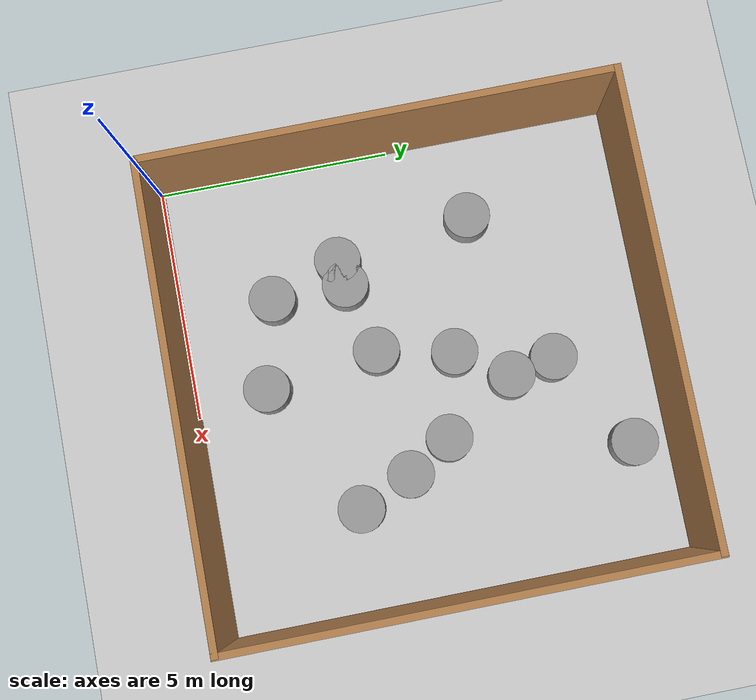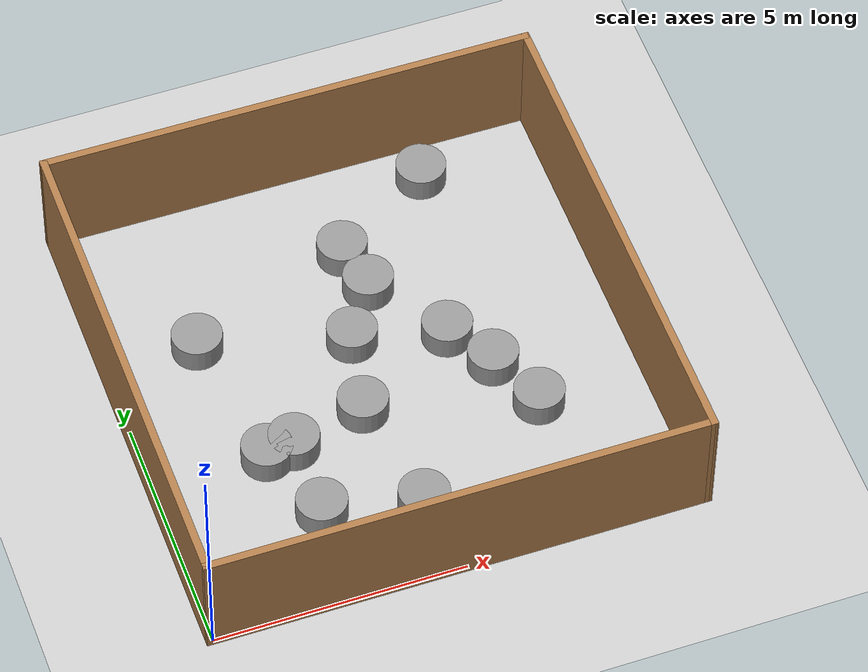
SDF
<sdf version="1.6">
 <world name="default">
  <light name="sun" type="directional">
   <pose>0 0 10 0 -0 0</pose>
   <diffuse>0.8 0.8 0.8 1</diffuse>
   <specular>0.1 0.1 0.1 1</specular>
   <attenuation>
    <range>1000</range>
    <constant>0.9</constant>
    <linear>0.01</linear>
    <quadratic>0.001</quadratic>
   </attenuation>
   <direction>-0.5 0.5 -1</direction>
  </light>
  <model name="ground_plane">
   <static>1</static>
   <link name="link">
    <collision name="collision">
     <geometry><plane><normal>0 0 1</normal><size>100 100</size></plane></geometry>
     <surface><friction><ode><mu>100</mu><mu2>50</mu2></ode></friction></surface>
    </collision>
    <visual name="visual">
     <cast_shadows>0</cast_shadows>
     <geometry><plane><normal>0 0 1</normal><size>100 100</size></plane></geometry>
     <material>
      <script><uri>file://media/materials/scripts/gazebo.material</uri><name>Gazebo/Grey</name></script>
     </material>
    </visual>
   </link>
  </model>
  <gravity>0 0 -9.8</gravity>
  <magnetic_field>6e-06 2.3e-05 -4.2e-05</magnetic_field>
  <atmosphere type="adiabatic"/>
  <physics name="default_physics" default="0" type="ode">
   <max_step_size>0.001</max_step_size>
   <real_time_factor>5</real_time_factor>
   <real_time_update_rate>5000</real_time_update_rate>
  </physics>
  <scene><ambient>0.4 0.4 0.4 1</ambient><background>0.7 0.7 0.7 1</background><shadows>1</shadows></scene>
  <spherical_coordinates>
   <surface_model>EARTH_WGS84</surface_model>
   <latitude_deg>0</latitude_deg>
   <longitude_deg>0</longitude_deg>
   <elevation>0</elevation>
   <heading_deg>0</heading_deg>
  </spherical_coordinates>
  <model name="my_wall_01">
   <pose>4.84148 4.89701 0 0 0 -0.007021</pose>
   <link name="Wall_0">
    <collision name="Wall_0_Collision">
     <geometry><box><size>9.95377 0.15 2.5</size></box></geometry>
     <pose>0 0 1.25 0 -0 0</pose>
    </collision>
    <visual name="Wall_0_Visual">
     <pose>0 0 1.25 0 -0 0</pose>
     <geometry><box><size>9.95377 0.15 2.5</size></box></geometry>
     <material>
      <script><uri>file://media/materials/scripts/gazebo.material</uri><name>Gazebo/Wood</name></script>
      <ambient>1 1 1 1</ambient>
     </material>
    </visual>
    <pose>0.034695 -4.92526 0 0 0 -3.13923</pose>
   </link>
   <link name="Wall_1">
    <collision name="Wall_1_Collision">
     <geometry><box><size>10.0004 0.15 2.5</size></box></geometry>
     <pose>0 0 1.25 0 -0 0</pose>
    </collision>
    <visual name="Wall_1_Visual">
     <pose>0 0 1.25 0 -0 0</pose>
     <geometry><box><size>10.0004 0.15 2.5</size></box></geometry>
     <material>
      <script><uri>file://media/materials/scripts/gazebo.material</uri><name>Gazebo/Wood</name></script>
      <ambient>1 1 1 1</ambient>
     </material>
    </visual>
    <pose>-4.91343 0.011303 0 0 -0 1.58019</pose>
   </link>
   <link name="Wall_2">
    <collision name="Wall_2_Collision">
     <geometry><box><size>9.95374 0.15 2.5</size></box></geometry>
     <pose>0 0 1.25 0 -0 0</pose>
    </collision>
    <visual name="Wall_2_Visual">
     <pose>0 0 1.25 0 -0 0</pose>
     <geometry><box><size>9.95374 0.15 2.5</size></box></geometry>
     <material>
      <script><uri>file://media/materials/scripts/gazebo.material</uri><name>Gazebo/Wood</name></script>
      <ambient>1 1 1 1</ambient>
     </material>
    </visual>
    <pose>-0.057827 4.9363 0 0 -0 0</pose>
   </link>
   <link name="Wall_3">
    <collision name="Wall_3_Collision">
     <geometry><box><size>10.0004 0.15 2.5</size></box></geometry>
     <pose>0 0 1.25 0 -0 0</pose>
    </collision>
    <visual name="Wall_3_Visual">
     <pose>0 0 1.25 0 -0 0</pose>
     <geometry><box><size>10.0004 0.15 2.5</size></box></geometry>
     <material>
      <script><uri>file://media/materials/scripts/gazebo.material</uri><name>Gazebo/Wood</name></script>
      <ambient>1 1 1 1</ambient>
     </material>
    </visual>
    <pose>4.91343 0.011303 0 0 0 -1.5614</pose>
   </link>
   <static>1</static>
  </model>
  <model name="c0">
   <link name="link">
    <inertial>
     <mass>0.284858</mass>
     <inertia>
      <ixx>0.0288096</ixx>
      <ixy>0</ixy>
      <ixz>0</ixz>
      <iyy>0.0288096</iyy>
      <iyz>0</iyz>
      <izz>0.010143</izz>
     </inertia>
    </inertial>
    <visual name="visual">
     <geometry><cylinder><radius>0.5</radius><length>1</length></cylinder></geometry>
     <material>
      <script><name>Gazebo/Grey</name><uri>file://media/materials/scripts/gazebo.material</uri></script>
      <ambient>0.3 0.3 0.3 1</ambient>
      <diffuse>0.7 0.7 0.7 1</diffuse>
      <specular>0.01 0.01 0.01 1</specular>
      <emissive>0 0 0 1</emissive>
      <shader type="vertex"><normal_map>__default__</normal_map></shader>
     </material>
    </visual>
    <collision name="collision">
     <geometry><cylinder><radius>0.5</radius><length>1</length></cylinder></geometry>
     <surface>
      <friction>
       <ode><mu>1</mu><mu2>1</mu2><fdir1>0 0 0</fdir1><slip1>0</slip1><slip2>0</slip2></ode>
       <torsional>
        <coefficient>1</coefficient>
        <patch_radius>0</patch_radius>
        <surface_radius>0</surface_radius>
        <use_patch_radius>1</use_patch_radius>
        <ode><slip>0</slip></ode>
       </torsional>
      </friction>
      <bounce><restitution_coefficient>0</restitution_coefficient><threshold>1e+06</threshold></bounce>
      <contact>
       <collide_without_contact>0</collide_without_contact>
       <collide_without_contact_bitmask>1</collide_without_contact_bitmask>
       <collide_bitmask>1</collide_bitmask>
       <ode>
        <soft_cfm>0</soft_cfm>
        <soft_erp>0.2</soft_erp>
        <kp>1e+13</kp>
        <kd>1</kd>
        <max_vel>0.01</max_vel>
        <min_depth>0</min_depth>
       </ode>
       <bullet>
        <split_impulse>1</split_impulse>
        <split_impulse_penetration_threshold>-0.01</split_impulse_penetration_threshold>
        <soft_cfm>0</soft_cfm>
        <soft_erp>0.2</soft_erp>
        <kp>1e+13</kp>
        <kd>1</kd>
       </bullet>
      </contact>
     </surface>
    </collision>
   </link>
   <static>1</static>
   <pose>2.2524730112213804 3.544906773251804 0 0 -0 0</pose>
  </model>
  <model name="c1">
   <link name="link">
    <inertial>
     <mass>0.284858</mass>
     <inertia>
      <ixx>0.0288096</ixx>
      <ixy>0</ixy>
      <ixz>0</ixz>
      <iyy>0.0288096</iyy>
      <iyz>0</iyz>
      <izz>0.010143</izz>
     </inertia>
    </inertial>
    <visual name="visual">
     <geometry><cylinder><radius>0.5</radius><length>1</length></cylinder></geometry>
     <material>
      <script><name>Gazebo/Grey</name><uri>file://media/materials/scripts/gazebo.material</uri></script>
      <ambient>0.3 0.3 0.3 1</ambient>
      <diffuse>0.7 0.7 0.7 1</diffuse>
      <specular>0.01 0.01 0.01 1</specular>
      <emissive>0 0 0 1</emissive>
      <shader type="vertex"><normal_map>__default__</normal_map></shader>
     </material>
    </visual>
    <collision name="collision">
     <geometry><cylinder><radius>0.5</radius><length>1</length></cylinder></geometry>
     <surface>
      <friction>
       <ode><mu>1</mu><mu2>1</mu2><fdir1>0 0 0</fdir1><slip1>0</slip1><slip2>0</slip2></ode>
       <torsional>
        <coefficient>1</coefficient>
        <patch_radius>0</patch_radius>
        <surface_radius>0</surface_radius>
        <use_patch_radius>1</use_patch_radius>
        <ode><slip>0</slip></ode>
       </torsional>
      </friction>
      <bounce><restitution_coefficient>0</restitution_coefficient><threshold>1e+06</threshold></bounce>
      <contact>
       <collide_without_contact>0</collide_without_contact>
       <collide_without_contact_bitmask>1</collide_without_contact_bitmask>
       <collide_bitmask>1</collide_bitmask>
       <ode>
        <soft_cfm>0</soft_cfm>
        <soft_erp>0.2</soft_erp>
        <kp>1e+13</kp>
        <kd>1</kd>
        <max_vel>0.01</max_vel>
        <min_depth>0</min_depth>
       </ode>
       <bullet>
        <split_impulse>1</split_impulse>
        <split_impulse_penetration_threshold>-0.01</split_impulse_penetration_threshold>
        <soft_cfm>0</soft_cfm>
        <soft_erp>0.2</soft_erp>
        <kp>1e+13</kp>
        <kd>1</kd>
       </bullet>
      </contact>
     </surface>
    </collision>
   </link>
   <static>1</static>
   <pose>4.67986451924824 5.6281547812031185 0 0 -0 0</pose>
  </model>
  <model name="c2">
   <link name="link">
    <inertial>
     <mass>0.284858</mass>
     <inertia>
      <ixx>0.0288096</ixx>
      <ixy>0</ixy>
      <ixz>0</ixz>
      <iyy>0.0288096</iyy>
      <iyz>0</iyz>
      <izz>0.010143</izz>
     </inertia>
    </inertial>
    <visual name="visual">
     <geometry><cylinder><radius>0.5</radius><length>1</length></cylinder></geometry>
     <material>
      <script><name>Gazebo/Grey</name><uri>file://media/materials/scripts/gazebo.material</uri></script>
      <ambient>0.3 0.3 0.3 1</ambient>
      <diffuse>0.7 0.7 0.7 1</diffuse>
      <specular>0.01 0.01 0.01 1</specular>
      <emissive>0 0 0 1</emissive>
      <shader type="vertex"><normal_map>__default__</normal_map></shader>
     </material>
    </visual>
    <collision name="collision">
     <geometry><cylinder><radius>0.5</radius><length>1</length></cylinder></geometry>
     <surface>
      <friction>
       <ode><mu>1</mu><mu2>1</mu2><fdir1>0 0 0</fdir1><slip1>0</slip1><slip2>0</slip2></ode>
       <torsional>
        <coefficient>1</coefficient>
        <patch_radius>0</patch_radius>
        <surface_radius>0</surface_radius>
        <use_patch_radius>1</use_patch_radius>
        <ode><slip>0</slip></ode>
       </torsional>
      </friction>
      <bounce><restitution_coefficient>0</restitution_coefficient><threshold>1e+06</threshold></bounce>
      <contact>
       <collide_without_contact>0</collide_without_contact>
       <collide_without_contact_bitmask>1</collide_without_contact_bitmask>
       <collide_bitmask>1</collide_bitmask>
       <ode>
        <soft_cfm>0</soft_cfm>
        <soft_erp>0.2</soft_erp>
        <kp>1e+13</kp>
        <kd>1</kd>
        <max_vel>0.01</max_vel>
        <min_depth>0</min_depth>
       </ode>
       <bullet>
        <split_impulse>1</split_impulse>
        <split_impulse_penetration_threshold>-0.01</split_impulse_penetration_threshold>
        <soft_cfm>0</soft_cfm>
        <soft_erp>0.2</soft_erp>
        <kp>1e+13</kp>
        <kd>1</kd>
       </bullet>
      </contact>
     </surface>
    </collision>
   </link>
   <static>1</static>
   <pose>2.823787213129811 2.0219774798477657 0 0 -0 0</pose>
  </model>
  <model name="c3">
   <link name="link">
    <inertial>
     <mass>0.284858</mass>
     <inertia>
      <ixx>0.0288096</ixx>
      <ixy>0</ixy>
      <ixz>0</ixz>
      <iyy>0.0288096</iyy>
      <iyz>0</iyz>
      <izz>0.010143</izz>
     </inertia>
    </inertial>
    <visual name="visual">
     <geometry><cylinder><radius>0.5</radius><length>1</length></cylinder></geometry>
     <material>
      <script><name>Gazebo/Grey</name><uri>file://media/materials/scripts/gazebo.material</uri></script>
      <ambient>0.3 0.3 0.3 1</ambient>
      <diffuse>0.7 0.7 0.7 1</diffuse>
      <specular>0.01 0.01 0.01 1</specular>
      <emissive>0 0 0 1</emissive>
      <shader type="vertex"><normal_map>__default__</normal_map></shader>
     </material>
    </visual>
    <collision name="collision">
     <geometry><cylinder><radius>0.5</radius><length>1</length></cylinder></geometry>
     <surface>
      <friction>
       <ode><mu>1</mu><mu2>1</mu2><fdir1>0 0 0</fdir1><slip1>0</slip1><slip2>0</slip2></ode>
       <torsional>
        <coefficient>1</coefficient>
        <patch_radius>0</patch_radius>
        <surface_radius>0</surface_radius>
        <use_patch_radius>1</use_patch_radius>
        <ode><slip>0</slip></ode>
       </torsional>
      </friction>
      <bounce><restitution_coefficient>0</restitution_coefficient><threshold>1e+06</threshold></bounce>
      <contact>
       <collide_without_contact>0</collide_without_contact>
       <collide_without_contact_bitmask>1</collide_without_contact_bitmask>
       <collide_bitmask>1</collide_bitmask>
       <ode>
        <soft_cfm>0</soft_cfm>
        <soft_erp>0.2</soft_erp>
        <kp>1e+13</kp>
        <kd>1</kd>
        <max_vel>0.01</max_vel>
        <min_depth>0</min_depth>
       </ode>
       <bullet>
        <split_impulse>1</split_impulse>
        <split_impulse_penetration_threshold>-0.01</split_impulse_penetration_threshold>
        <soft_cfm>0</soft_cfm>
        <soft_erp>0.2</soft_erp>
        <kp>1e+13</kp>
        <kd>1</kd>
       </bullet>
      </contact>
     </surface>
    </collision>
   </link>
   <static>1</static>
   <pose>7.562961907634017 3.075446567223797 0 0 -0 0</pose>
  </model>
  <model name="c4">
   <link name="link">
    <inertial>
     <mass>0.284858</mass>
     <inertia>
      <ixx>0.0288096</ixx>
      <ixy>0</ixy>
      <ixz>0</ixz>
      <iyy>0.0288096</iyy>
      <iyz>0</iyz>
      <izz>0.010143</izz>
     </inertia>
    </inertial>
    <visual name="visual">
     <geometry><cylinder><radius>0.5</radius><length>1</length></cylinder></geometry>
     <material>
      <script><name>Gazebo/Grey</name><uri>file://media/materials/scripts/gazebo.material</uri></script>
      <ambient>0.3 0.3 0.3 1</ambient>
      <diffuse>0.7 0.7 0.7 1</diffuse>
      <specular>0.01 0.01 0.01 1</specular>
      <emissive>0 0 0 1</emissive>
      <shader type="vertex"><normal_map>__default__</normal_map></shader>
     </material>
    </visual>
    <collision name="collision">
     <geometry><cylinder><radius>0.5</radius><length>1</length></cylinder></geometry>
     <surface>
      <friction>
       <ode><mu>1</mu><mu2>1</mu2><fdir1>0 0 0</fdir1><slip1>0</slip1><slip2>0</slip2></ode>
       <torsional>
        <coefficient>1</coefficient>
        <patch_radius>0</patch_radius>
        <surface_radius>0</surface_radius>
        <use_patch_radius>1</use_patch_radius>
        <ode><slip>0</slip></ode>
       </torsional>
      </friction>
      <bounce><restitution_coefficient>0</restitution_coefficient><threshold>1e+06</threshold></bounce>
      <contact>
       <collide_without_contact>0</collide_without_contact>
       <collide_without_contact_bitmask>1</collide_without_contact_bitmask>
       <collide_bitmask>1</collide_bitmask>
       <ode>
        <soft_cfm>0</soft_cfm>
        <soft_erp>0.2</soft_erp>
        <kp>1e+13</kp>
        <kd>1</kd>
        <max_vel>0.01</max_vel>
        <min_depth>0</min_depth>
       </ode>
       <bullet>
        <split_impulse>1</split_impulse>
        <split_impulse_penetration_threshold>-0.01</split_impulse_penetration_threshold>
        <soft_cfm>0</soft_cfm>
        <soft_erp>0.2</soft_erp>
        <kp>1e+13</kp>
        <kd>1</kd>
       </bullet>
      </contact>
     </surface>
    </collision>
   </link>
   <static>1</static>
   <pose>7.282618441757725 8.97239047772494 0 0 -0 0</pose>
  </model>
  <model name="c5">
   <link name="link">
    <inertial>
     <mass>0.284858</mass>
     <inertia>
      <ixx>0.0288096</ixx>
      <ixy>0</ixy>
      <ixz>0</ixz>
      <iyy>0.0288096</iyy>
      <iyz>0</iyz>
      <izz>0.010143</izz>
     </inertia>
    </inertial>
    <visual name="visual">
     <geometry><cylinder><radius>0.5</radius><length>1</length></cylinder></geometry>
     <material>
      <script><name>Gazebo/Grey</name><uri>file://media/materials/scripts/gazebo.material</uri></script>
      <ambient>0.3 0.3 0.3 1</ambient>
      <diffuse>0.7 0.7 0.7 1</diffuse>
      <specular>0.01 0.01 0.01 1</specular>
      <emissive>0 0 0 1</emissive>
      <shader type="vertex"><normal_map>__default__</normal_map></shader>
     </material>
    </visual>
    <collision name="collision">
     <geometry><cylinder><radius>0.5</radius><length>1</length></cylinder></geometry>
     <surface>
      <friction>
       <ode><mu>1</mu><mu2>1</mu2><fdir1>0 0 0</fdir1><slip1>0</slip1><slip2>0</slip2></ode>
       <torsional>
        <coefficient>1</coefficient>
        <patch_radius>0</patch_radius>
        <surface_radius>0</surface_radius>
        <use_patch_radius>1</use_patch_radius>
        <ode><slip>0</slip></ode>
       </torsional>
      </friction>
      <bounce><restitution_coefficient>0</restitution_coefficient><threshold>1e+06</threshold></bounce>
      <contact>
       <collide_without_contact>0</collide_without_contact>
       <collide_without_contact_bitmask>1</collide_without_contact_bitmask>
       <collide_bitmask>1</collide_bitmask>
       <ode>
        <soft_cfm>0</soft_cfm>
        <soft_erp>0.2</soft_erp>
        <kp>1e+13</kp>
        <kd>1</kd>
        <max_vel>0.01</max_vel>
        <min_depth>0</min_depth>
       </ode>
       <bullet>
        <split_impulse>1</split_impulse>
        <split_impulse_penetration_threshold>-0.01</split_impulse_penetration_threshold>
        <soft_cfm>0</soft_cfm>
        <soft_erp>0.2</soft_erp>
        <kp>1e+13</kp>
        <kd>1</kd>
       </bullet>
      </contact>
     </surface>
    </collision>
   </link>
   <static>1</static>
   <pose>2.812990300564694 3.610385534122311 0 0 -0 0</pose>
  </model>
  <model name="c6">
   <link name="link">
    <inertial>
     <mass>0.284858</mass>
     <inertia>
      <ixx>0.0288096</ixx>
      <ixy>0</ixy>
      <ixz>0</ixz>
      <iyy>0.0288096</iyy>
      <iyz>0</iyz>
      <izz>0.010143</izz>
     </inertia>
    </inertial>
    <visual name="visual">
     <geometry><cylinder><radius>0.5</radius><length>1</length></cylinder></geometry>
     <material>
      <script><name>Gazebo/Grey</name><uri>file://media/materials/scripts/gazebo.material</uri></script>
      <ambient>0.3 0.3 0.3 1</ambient>
      <diffuse>0.7 0.7 0.7 1</diffuse>
      <specular>0.01 0.01 0.01 1</specular>
      <emissive>0 0 0 1</emissive>
      <shader type="vertex"><normal_map>__default__</normal_map></shader>
     </material>
    </visual>
    <collision name="collision">
     <geometry><cylinder><radius>0.5</radius><length>1</length></cylinder></geometry>
     <surface>
      <friction>
       <ode><mu>1</mu><mu2>1</mu2><fdir1>0 0 0</fdir1><slip1>0</slip1><slip2>0</slip2></ode>
       <torsional>
        <coefficient>1</coefficient>
        <patch_radius>0</patch_radius>
        <surface_radius>0</surface_radius>
        <use_patch_radius>1</use_patch_radius>
        <ode><slip>0</slip></ode>
       </torsional>
      </friction>
      <bounce><restitution_coefficient>0</restitution_coefficient><threshold>1e+06</threshold></bounce>
      <contact>
       <collide_without_contact>0</collide_without_contact>
       <collide_without_contact_bitmask>1</collide_without_contact_bitmask>
       <collide_bitmask>1</collide_bitmask>
       <ode>
        <soft_cfm>0</soft_cfm>
        <soft_erp>0.2</soft_erp>
        <kp>1e+13</kp>
        <kd>1</kd>
        <max_vel>0.01</max_vel>
        <min_depth>0</min_depth>
       </ode>
       <bullet>
        <split_impulse>1</split_impulse>
        <split_impulse_penetration_threshold>-0.01</split_impulse_penetration_threshold>
        <soft_cfm>0</soft_cfm>
        <soft_erp>0.2</soft_erp>
        <kp>1e+13</kp>
        <kd>1</kd>
       </bullet>
      </contact>
     </surface>
    </collision>
   </link>
   <static>1</static>
   <pose>5.392612456360688 6.722708169234549 0 0 -0 0</pose>
  </model>
  <model name="c7">
   <link name="link">
    <inertial>
     <mass>0.284858</mass>
     <inertia>
      <ixx>0.0288096</ixx>
      <ixy>0</ixy>
      <ixz>0</ixz>
      <iyy>0.0288096</iyy>
      <iyz>0</iyz>
      <izz>0.010143</izz>
     </inertia>
    </inertial>
    <visual name="visual">
     <geometry><cylinder><radius>0.5</radius><length>1</length></cylinder></geometry>
     <material>
      <script><name>Gazebo/Grey</name><uri>file://media/materials/scripts/gazebo.material</uri></script>
      <ambient>0.3 0.3 0.3 1</ambient>
      <diffuse>0.7 0.7 0.7 1</diffuse>
      <specular>0.01 0.01 0.01 1</specular>
      <emissive>0 0 0 1</emissive>
      <shader type="vertex"><normal_map>__default__</normal_map></shader>
     </material>
    </visual>
    <collision name="collision">
     <geometry><cylinder><radius>0.5</radius><length>1</length></cylinder></geometry>
     <surface>
      <friction>
       <ode><mu>1</mu><mu2>1</mu2><fdir1>0 0 0</fdir1><slip1>0</slip1><slip2>0</slip2></ode>
       <torsional>
        <coefficient>1</coefficient>
        <patch_radius>0</patch_radius>
        <surface_radius>0</surface_radius>
        <use_patch_radius>1</use_patch_radius>
        <ode><slip>0</slip></ode>
       </torsional>
      </friction>
      <bounce><restitution_coefficient>0</restitution_coefficient><threshold>1e+06</threshold></bounce>
      <contact>
       <collide_without_contact>0</collide_without_contact>
       <collide_without_contact_bitmask>1</collide_without_contact_bitmask>
       <collide_bitmask>1</collide_bitmask>
       <ode>
        <soft_cfm>0</soft_cfm>
        <soft_erp>0.2</soft_erp>
        <kp>1e+13</kp>
        <kd>1</kd>
        <max_vel>0.01</max_vel>
        <min_depth>0</min_depth>
       </ode>
       <bullet>
        <split_impulse>1</split_impulse>
        <split_impulse_penetration_threshold>-0.01</split_impulse_penetration_threshold>
        <soft_cfm>0</soft_cfm>
        <soft_erp>0.2</soft_erp>
        <kp>1e+13</kp>
        <kd>1</kd>
       </bullet>
      </contact>
     </surface>
    </collision>
   </link>
   <static>1</static>
   <pose>4.332465267443667 4.0011313887158 0 0 -0 0</pose>
  </model>
  <model name="c8">
   <link name="link">
    <inertial>
     <mass>0.284858</mass>
     <inertia>
      <ixx>0.0288096</ixx>
      <ixy>0</ixy>
      <ixz>0</ixz>
      <iyy>0.0288096</iyy>
      <iyz>0</iyz>
      <izz>0.010143</izz>
     </inertia>
    </inertial>
    <visual name="visual">
     <geometry><cylinder><radius>0.5</radius><length>1</length></cylinder></geometry>
     <material>
      <script><name>Gazebo/Grey</name><uri>file://media/materials/scripts/gazebo.material</uri></script>
      <ambient>0.3 0.3 0.3 1</ambient>
      <diffuse>0.7 0.7 0.7 1</diffuse>
      <specular>0.01 0.01 0.01 1</specular>
      <emissive>0 0 0 1</emissive>
      <shader type="vertex"><normal_map>__default__</normal_map></shader>
     </material>
    </visual>
    <collision name="collision">
     <geometry><cylinder><radius>0.5</radius><length>1</length></cylinder></geometry>
     <surface>
      <friction>
       <ode><mu>1</mu><mu2>1</mu2><fdir1>0 0 0</fdir1><slip1>0</slip1><slip2>0</slip2></ode>
       <torsional>
        <coefficient>1</coefficient>
        <patch_radius>0</patch_radius>
        <surface_radius>0</surface_radius>
        <use_patch_radius>1</use_patch_radius>
        <ode><slip>0</slip></ode>
       </torsional>
      </friction>
      <bounce><restitution_coefficient>0</restitution_coefficient><threshold>1e+06</threshold></bounce>
      <contact>
       <collide_without_contact>0</collide_without_contact>
       <collide_without_contact_bitmask>1</collide_without_contact_bitmask>
       <collide_bitmask>1</collide_bitmask>
       <ode>
        <soft_cfm>0</soft_cfm>
        <soft_erp>0.2</soft_erp>
        <kp>1e+13</kp>
        <kd>1</kd>
        <max_vel>0.01</max_vel>
        <min_depth>0</min_depth>
       </ode>
       <bullet>
        <split_impulse>1</split_impulse>
        <split_impulse_penetration_threshold>-0.01</split_impulse_penetration_threshold>
        <soft_cfm>0</soft_cfm>
        <soft_erp>0.2</soft_erp>
        <kp>1e+13</kp>
        <kd>1</kd>
       </bullet>
      </contact>
     </surface>
    </collision>
   </link>
   <static>1</static>
   <pose>4.70097732770779 1.5728902924465524 0 0 -0 0</pose>
  </model>
  <model name="c9">
   <link name="link">
    <inertial>
     <mass>0.284858</mass>
     <inertia>
      <ixx>0.0288096</ixx>
      <ixy>0</ixy>
      <ixz>0</ixz>
      <iyy>0.0288096</iyy>
      <iyz>0</iyz>
      <izz>0.010143</izz>
     </inertia>
    </inertial>
    <visual name="visual">
     <geometry><cylinder><radius>0.5</radius><length>1</length></cylinder></geometry>
     <material>
      <script><name>Gazebo/Grey</name><uri>file://media/materials/scripts/gazebo.material</uri></script>
      <ambient>0.3 0.3 0.3 1</ambient>
      <diffuse>0.7 0.7 0.7 1</diffuse>
      <specular>0.01 0.01 0.01 1</specular>
      <emissive>0 0 0 1</emissive>
      <shader type="vertex"><normal_map>__default__</normal_map></shader>
     </material>
    </visual>
    <collision name="collision">
     <geometry><cylinder><radius>0.5</radius><length>1</length></cylinder></geometry>
     <surface>
      <friction>
       <ode><mu>1</mu><mu2>1</mu2><fdir1>0 0 0</fdir1><slip1>0</slip1><slip2>0</slip2></ode>
       <torsional>
        <coefficient>1</coefficient>
        <patch_radius>0</patch_radius>
        <surface_radius>0</surface_radius>
        <use_patch_radius>1</use_patch_radius>
        <ode><slip>0</slip></ode>
       </torsional>
      </friction>
      <bounce><restitution_coefficient>0</restitution_coefficient><threshold>1e+06</threshold></bounce>
      <contact>
       <collide_without_contact>0</collide_without_contact>
       <collide_without_contact_bitmask>1</collide_without_contact_bitmask>
       <collide_bitmask>1</collide_bitmask>
       <ode>
        <soft_cfm>0</soft_cfm>
        <soft_erp>0.2</soft_erp>
        <kp>1e+13</kp>
        <kd>1</kd>
        <max_vel>0.01</max_vel>
        <min_depth>0</min_depth>
       </ode>
       <bullet>
        <split_impulse>1</split_impulse>
        <split_impulse_penetration_threshold>-0.01</split_impulse_penetration_threshold>
        <soft_cfm>0</soft_cfm>
        <soft_erp>0.2</soft_erp>
        <kp>1e+13</kp>
        <kd>1</kd>
       </bullet>
      </contact>
     </surface>
    </collision>
   </link>
   <static>1</static>
   <pose>6.454627189103665 5.163474422060429 0 0 -0 0</pose>
  </model>
  <model name="c10">
   <link name="link">
    <inertial>
     <mass>0.284858</mass>
     <inertia>
      <ixx>0.0288096</ixx>
      <ixy>0</ixy>
      <ixz>0</ixz>
      <iyy>0.0288096</iyy>
      <iyz>0</iyz>
      <izz>0.010143</izz>
     </inertia>
    </inertial>
    <visual name="visual">
     <geometry><cylinder><radius>0.5</radius><length>1</length></cylinder></geometry>
     <material>
      <script><name>Gazebo/Grey</name><uri>file://media/materials/scripts/gazebo.material</uri></script>
      <ambient>0.3 0.3 0.3 1</ambient>
      <diffuse>0.7 0.7 0.7 1</diffuse>
      <specular>0.01 0.01 0.01 1</specular>
      <emissive>0 0 0 1</emissive>
      <shader type="vertex"><normal_map>__default__</normal_map></shader>
     </material>
    </visual>
    <collision name="collision">
     <geometry><cylinder><radius>0.5</radius><length>1</length></cylinder></geometry>
     <surface>
      <friction>
       <ode><mu>1</mu><mu2>1</mu2><fdir1>0 0 0</fdir1><slip1>0</slip1><slip2>0</slip2></ode>
       <torsional>
        <coefficient>1</coefficient>
        <patch_radius>0</patch_radius>
        <surface_radius>0</surface_radius>
        <use_patch_radius>1</use_patch_radius>
        <ode><slip>0</slip></ode>
       </torsional>
      </friction>
      <bounce><restitution_coefficient>0</restitution_coefficient><threshold>1e+06</threshold></bounce>
      <contact>
       <collide_without_contact>0</collide_without_contact>
       <collide_without_contact_bitmask>1</collide_without_contact_bitmask>
       <collide_bitmask>1</collide_bitmask>
       <ode>
        <soft_cfm>0</soft_cfm>
        <soft_erp>0.2</soft_erp>
        <kp>1e+13</kp>
        <kd>1</kd>
        <max_vel>0.01</max_vel>
        <min_depth>0</min_depth>
       </ode>
       <bullet>
        <split_impulse>1</split_impulse>
        <split_impulse_penetration_threshold>-0.01</split_impulse_penetration_threshold>
        <soft_cfm>0</soft_cfm>
        <soft_erp>0.2</soft_erp>
        <kp>1e+13</kp>
        <kd>1</kd>
       </bullet>
      </contact>
     </surface>
    </collision>
   </link>
   <static>1</static>
   <pose>1.8203444983828545 6.4619344218982695 0 0 -0 0</pose>
  </model>
  <model name="c11">
   <link name="link">
    <inertial>
     <mass>0.284858</mass>
     <inertia>
      <ixx>0.0288096</ixx>
      <ixy>0</ixy>
      <ixz>0</ixz>
      <iyy>0.0288096</iyy>
      <iyz>0</iyz>
      <izz>0.010143</izz>
     </inertia>
    </inertial>
    <visual name="visual">
     <geometry><cylinder><radius>0.5</radius><length>1</length></cylinder></geometry>
     <material>
      <script><name>Gazebo/Grey</name><uri>file://media/materials/scripts/gazebo.material</uri></script>
      <ambient>0.3 0.3 0.3 1</ambient>
      <diffuse>0.7 0.7 0.7 1</diffuse>
      <specular>0.01 0.01 0.01 1</specular>
      <emissive>0 0 0 1</emissive>
      <shader type="vertex"><normal_map>__default__</normal_map></shader>
     </material>
    </visual>
    <collision name="collision">
     <geometry><cylinder><radius>0.5</radius><length>1</length></cylinder></geometry>
     <surface>
      <friction>
       <ode><mu>1</mu><mu2>1</mu2><fdir1>0 0 0</fdir1><slip1>0</slip1><slip2>0</slip2></ode>
       <torsional>
        <coefficient>1</coefficient>
        <patch_radius>0</patch_radius>
        <surface_radius>0</surface_radius>
        <use_patch_radius>1</use_patch_radius>
        <ode><slip>0</slip></ode>
       </torsional>
      </friction>
      <bounce><restitution_coefficient>0</restitution_coefficient><threshold>1e+06</threshold></bounce>
      <contact>
       <collide_without_contact>0</collide_without_contact>
       <collide_without_contact_bitmask>1</collide_without_contact_bitmask>
       <collide_bitmask>1</collide_bitmask>
       <ode>
        <soft_cfm>0</soft_cfm>
        <soft_erp>0.2</soft_erp>
        <kp>1e+13</kp>
        <kd>1</kd>
        <max_vel>0.01</max_vel>
        <min_depth>0</min_depth>
       </ode>
       <bullet>
        <split_impulse>1</split_impulse>
        <split_impulse_penetration_threshold>-0.01</split_impulse_penetration_threshold>
        <soft_cfm>0</soft_cfm>
        <soft_erp>0.2</soft_erp>
        <kp>1e+13</kp>
        <kd>1</kd>
       </bullet>
      </contact>
     </surface>
    </collision>
   </link>
   <static>1</static>
   <pose>5.188692054891836 7.674916630271215 0 0 -0 0</pose>
  </model>
  <model name="c12">
   <link name="link">
    <inertial>
     <mass>0.284858</mass>
     <inertia>
      <ixx>0.0288096</ixx>
      <ixy>0</ixy>
      <ixz>0</ixz>
      <iyy>0.0288096</iyy>
      <iyz>0</iyz>
      <izz>0.010143</izz>
     </inertia>
    </inertial>
    <visual name="visual">
     <geometry><cylinder><radius>0.5</radius><length>1</length></cylinder></geometry>
     <material>
      <script><name>Gazebo/Grey</name><uri>file://media/materials/scripts/gazebo.material</uri></script>
      <ambient>0.3 0.3 0.3 1</ambient>
      <diffuse>0.7 0.7 0.7 1</diffuse>
      <specular>0.01 0.01 0.01 1</specular>
      <emissive>0 0 0 1</emissive>
      <shader type="vertex"><normal_map>__default__</normal_map></shader>
     </material>
    </visual>
    <collision name="collision">
     <geometry><cylinder><radius>0.5</radius><length>1</length></cylinder></geometry>
     <surface>
      <friction>
       <ode><mu>1</mu><mu2>1</mu2><fdir1>0 0 0</fdir1><slip1>0</slip1><slip2>0</slip2></ode>
       <torsional>
        <coefficient>1</coefficient>
        <patch_radius>0</patch_radius>
        <surface_radius>0</surface_radius>
        <use_patch_radius>1</use_patch_radius>
        <ode><slip>0</slip></ode>
       </torsional>
      </friction>
      <bounce><restitution_coefficient>0</restitution_coefficient><threshold>1e+06</threshold></bounce>
      <contact>
       <collide_without_contact>0</collide_without_contact>
       <collide_without_contact_bitmask>1</collide_without_contact_bitmask>
       <collide_bitmask>1</collide_bitmask>
       <ode>
        <soft_cfm>0</soft_cfm>
        <soft_erp>0.2</soft_erp>
        <kp>1e+13</kp>
        <kd>1</kd>
        <max_vel>0.01</max_vel>
        <min_depth>0</min_depth>
       </ode>
       <bullet>
        <split_impulse>1</split_impulse>
        <split_impulse_penetration_threshold>-0.01</split_impulse_penetration_threshold>
        <soft_cfm>0</soft_cfm>
        <soft_erp>0.2</soft_erp>
        <kp>1e+13</kp>
        <kd>1</kd>
       </bullet>
      </contact>
     </surface>
    </collision>
   </link>
   <static>1</static>
   <pose>7.049616252447542 4.223648224577059 0 0 -0 0</pose>
  </model>
 </world>
</sdf>
